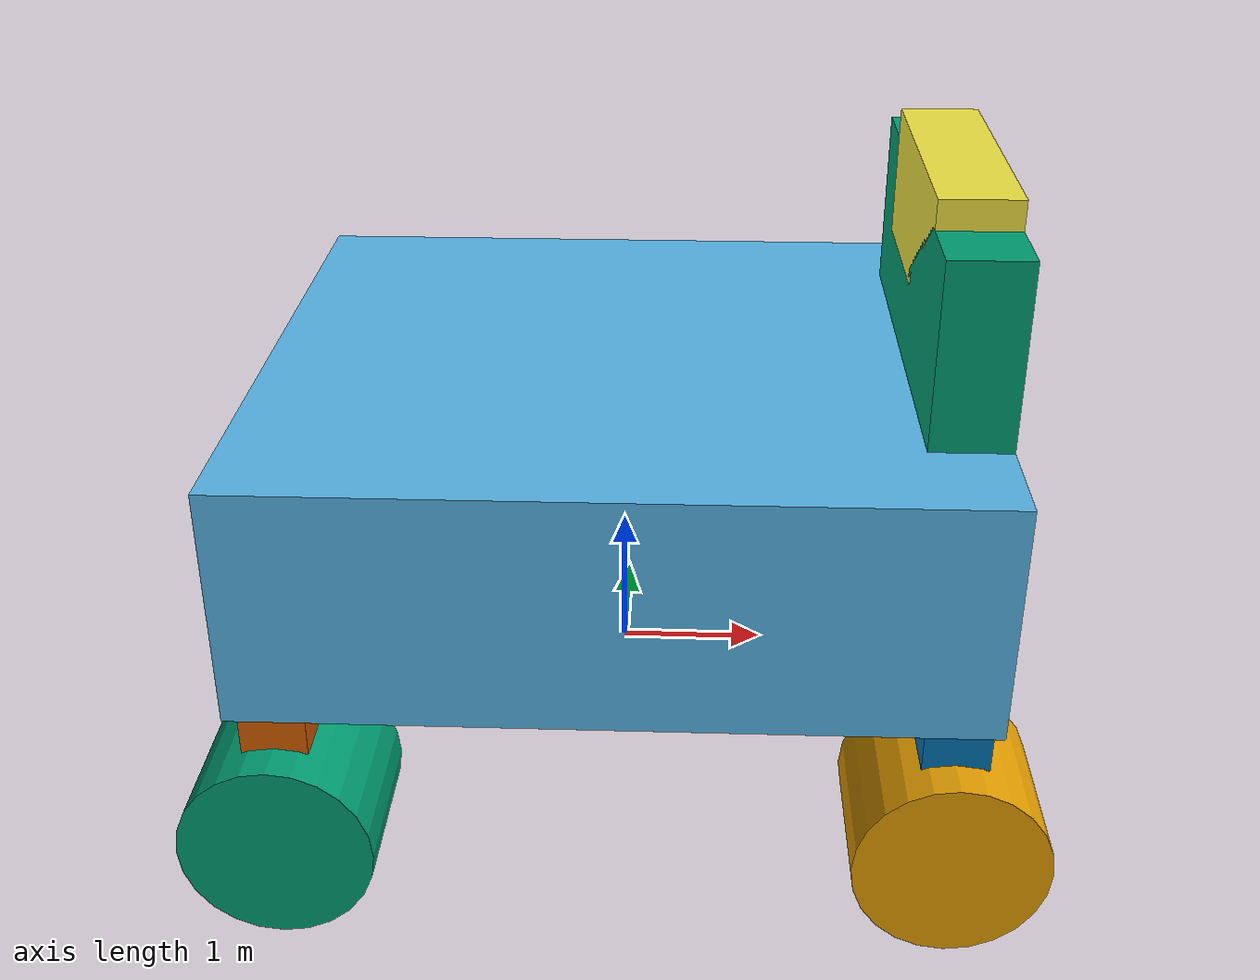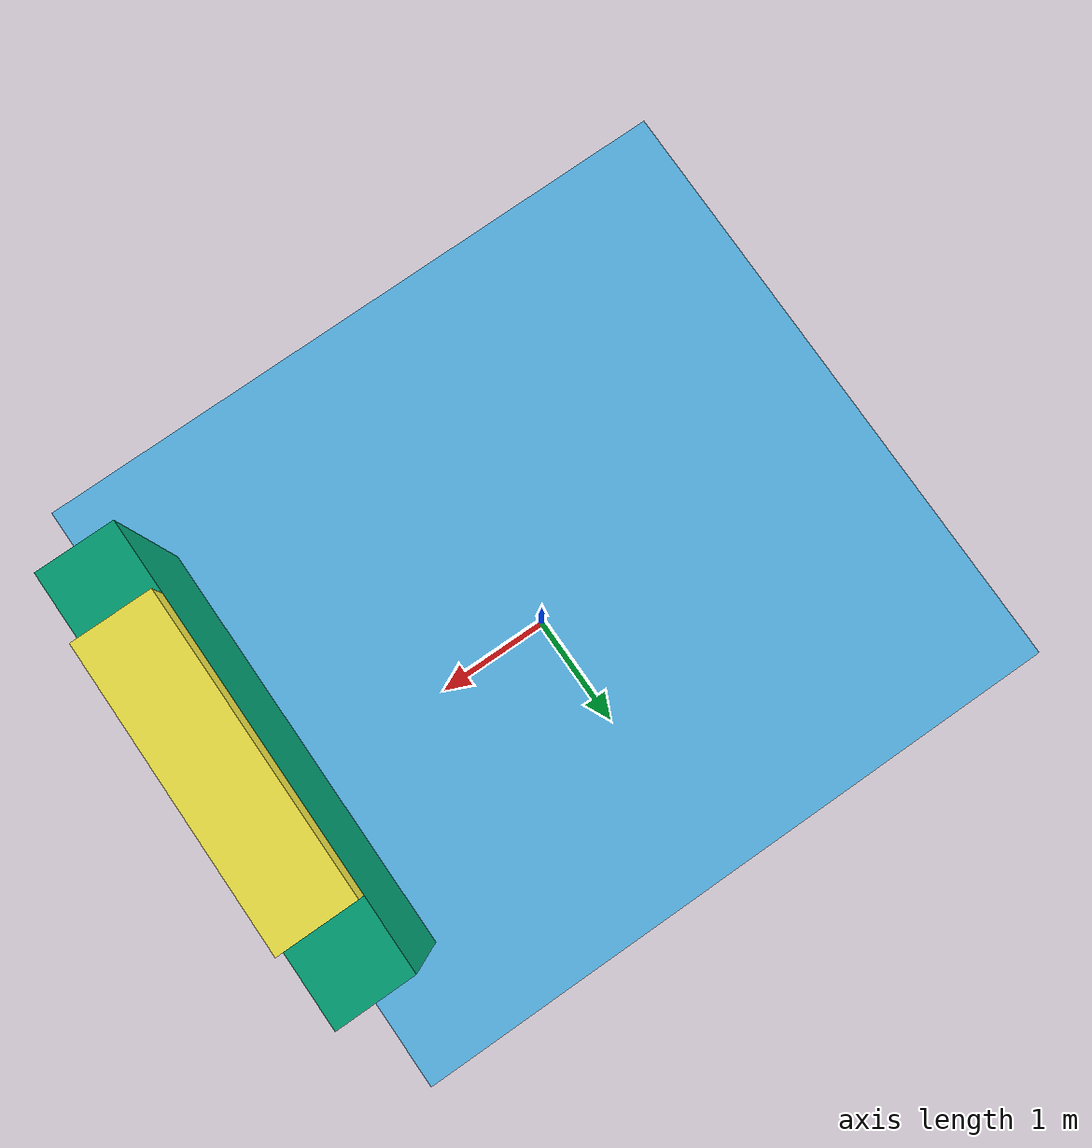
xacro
<?xml version="1.0"?>
<robot xmlns:xacro="http://www.ros.org/wiki/xacro" name="mani">

	<!-- TODO: set to correct mass values
		   set to correct inertia values
		   joint speed chassis_to_steeringangles
		   adjust coordinate system in CAD files
		   add camera head -->

	<xacro:property name="to_scale" value="0.01"/>

	<!-- Links -->
	<link name="dummy">
	</link>

	<link name="chassis">
		<xacro:property name="ch_x_depth" value="4.84"/>
		<xacro:property name="ch_y_width" value="4.50"/>
		<xacro:property name="ch_z_height" value="1.59"/>
		<xacro:property name="ch_mass" value="0.1"/> <!-- 12.191 in kg -->

		<visual name="visual">
			<origin xyz="0 0 0"/>
			<geometry>
				<box size="${ch_x_depth} ${ch_y_width} ${ch_z_height}"/>
			</geometry>
		</visual>

		<!-- simplify as a box for quicker processing -->
		<collision name="collision">
			<origin xyz="0 0 0" rpy="0 0 0"/>
			<geometry>
				<box size="${ch_x_depth} ${ch_y_width} ${ch_z_height}"/>
			</geometry>
		</collision>

		<inertial>
			<!-- origin = center of mass -->
			<mass value="${ch_mass}"/>
			<inertia ixx="0.1"
				 ixy="0"
				 ixz="0"
				 iyy="0.1"
				 iyz="0"
				 izz="0.1"/>
		</inertial>
	</link>

	<link name="camera_neck">
		<xacro:property name="camn_x" value="0.53"/>
		<xacro:property name="camn_y" value="3.05"/>
		<xacro:property name="camn_z" value="1.22"/>
		<xacro:property name="camn_mass" value="0.1"/>

		<visual name="visual">

			<origin xyz="0 0 0"/>
			<geometry>
				<box size="${camn_x} ${camn_y} ${camn_z}"/>
			</geometry>
		</visual>

		<collision name="collision">
			<origin xyz="0 0 0"/>
                        <geometry>
                                <box size="${camn_x} ${camn_y} ${camn_z}"/>
                        </geometry>
		</collision>

		<inertial>
			<mass value="${camn_mass}"/>
			<inertia ixx="0.1"
                                 ixy="0"
                                 ixz="0"
                                 iyy="0.1"
                                 iyz="0"
                                 izz="0.1"/>
		</inertial>
	</link>

	<link name="camera_head">
		<xacro:property name="camh_x" value="0.53"/>
		<xacro:property name="camh_y" value="2.03"/>
		<xacro:property name="camh_z" value="0.88"/>
		<xacro:property name="camh_mass" value="0.1"/>

		<visual name="visual">
			<origin xyz="0 0 0"/>
			<geometry>
				<box size="${camh_x} ${camh_y} ${camh_z}"/>
			</geometry>
		</visual>

		<collision name="collision">
			<origin xyz="0 0 ${camh_z/3}" rpy="0 0 1.570"/>
			<geometry>
				<box size="${camh_x} ${camh_y} ${camh_z}"/>
			</geometry>
		</collision>

		<inertial>
			<mass value="${camh_mass}"/>
			<inertia ixx="0.1"
                                 ixy="0"
                                 ixz="0"
                                 iyy="0.1"
                                 iyz="0"
                                 izz="0.1"/>
		</inertial>
	</link>

	<xacro:macro name="steering_angle_inertia" params="mass">
		<inertial>
			<origin rpy="0 0 0"/>
			<mass value="${mass}"/>
			<inertia ixx="0.1"
                                 ixy="0"
                                 ixz="0"
                                 iyy="0.1"
                                 iyz="0"
                                 izz="0.1"/>
                </inertial>
	</xacro:macro>

	<xacro:property name="sa_x" value="0.44"/>
        <xacro:property name="sa_y" value="1.21"/>
        <xacro:property name="sa_z" value="1.30"/>
        <xacro:property name="sa_mass" value="0.1"/>
	<xacro:macro name="steering_angle" params="name *visual_origin *collision_origin *inertial_origin">
		<link name="steering_angle_${name}">
                	<visual name="visual">
                    		<xacro:insert_block name="visual_origin"/>
                        	<geometry>
                                	<box size="${sa_x} ${sa_y} ${sa_z}"/>
                        	</geometry>
                	</visual>

                	<!-- not possible to simplify with a simple shape, so use original mesh -->
                	<collision name="collision">
                        	<xacro:insert_block name="collision_origin"/>
                        	<geometry>
                        		<box size="${sa_x} ${sa_y} ${sa_z}"/>
</geometry>
                	</collision>

                	<inertial>
				<xacro:insert_block name="inertial_origin"/>
				<mass value="${sa_mass}"/>
				<inertia ixx="0.1"
                                 	 ixy="0"
                                	 ixz="0"
                                 	 iyy="0.1"
                                 	 iyz="0"
                                 	 izz="0.1"/>
                	</inertial>
        	</link>
	</xacro:macro>

	<steering_angle name="frontright">
		<origin xyz="0 ${sa_y/4} 0"/>
		<origin xyz="0 ${sa_y/4} 0"/>
		<origin xyz="0 0 0"/>
	</steering_angle>
         <link name="steering_angle_backright">
                <visual name="visual">
			<origin xyz="0 ${sa_y/4} 0"/>
			<geometry>
				<box size="${sa_x} ${sa_y} ${sa_z}"/>
			</geometry>
                </visual>

                <!-- not possible to simplify with a simple shape, so use original mesh -->
                <collision name="collision">
                        <origin xyz="0 ${sa_y/4} 0"/>
                        <geometry>
                        	<box size="${sa_x} ${sa_y} ${sa_z}"/>
</geometry>
                </collision>

		<xacro:steering_angle_inertia mass="${sa_mass}"/>
        </link>

	 <link name="steering_angle_frontleft">

              	<visual name="visual">
			<origin xyz="0 ${-sa_y/4} 0"/>
			<geometry>
				<box size="${sa_x} ${sa_y} ${sa_z}"/>
			</geometry>
                </visual>

                <!-- not possible to simplify with a simple shape, so use original mesh -->
                <collision name="collision">
                        <origin xyz="0 ${-sa_y/4} 0"/>
                        <geometry>
                        <box size="${sa_x} ${sa_y} ${sa_z}"/>
                             </geometry>
                </collision>

		<xacro:steering_angle_inertia mass="${sa_mass}"/>
        </link>

	<link name="steering_angle_backleft">
               	<visual name="visual">
			<origin xyz="0 ${-sa_y/4} 0"/>
			<geometry>
				<box size="${sa_x} ${sa_y} ${sa_z}"/>
			</geometry>
                </visual>

                <!-- not possible to simplify with a simple shape, so use original mesh -->
                <collision name="collision">
                       	<origin xyz="0 ${-sa_y/4} 0"/>
                        <geometry>
                        	<box size="${sa_x} ${sa_y} ${sa_z}"/>
</geometry>
                </collision>

		<xacro:steering_angle_inertia mass="${sa_mass}"/>
	</link>

	<!-- wheels -->

	<link name="wheel_frontright">
		<xacro:property name="wh_length" value="1.15"/>
  		<xacro:property name="wh_radius" value="${1.30/2}"/>
               	<xacro:property name="wh_mass" value="0.1"/>

		<visual name="visual">

			<origin xyz="0 0 0"/>
			<geometry>
				<cylinder length="${wh_length}" radius="${wh_radius}"/>
			</geometry>
		</visual>

		<collision name="collision">
			<origin xyz="0 0 0"/>
			<geometry>
				<cylinder length="${wh_length}" radius="${wh_radius}"/>
			</geometry>
		</collision>

		<inertial>
			<mass value="${wh_mass}"/>
			<inertia ixx="0.1"
				 ixy="0"
				 ixz="0"
				 iyy="0.1"
				 iyz="0"
				 izz="0.1"/>
		</inertial>
	</link>

	<link name="wheel_frontleft">
                <visual name="visual">
			<origin xyz="0 0 0"/>
                        <geometry>
				<cylinder length="${wh_length}" radius="${wh_radius}"/>
			</geometry>
                </visual>

                <collision name="collision">
                        <origin xyz="0 0 0"/>
                        <geometry>
                                <cylinder length="${wh_length}" radius="${wh_radius}"/>
                        </geometry>
                </collision>

                <inertial>
                        <mass value="${wh_mass}"/>
                        <inertia ixx="0.1"
                                 ixy="0"
                                 ixz="0"
                                 iyy="0.1"
                                 iyz="0"
                                 izz="0.1"/>
                </inertial>
        </link>

	<link name="wheel_backright">
                <visual name="visual">
			<origin xyz="0 0 0"/>
			<geometry>
				<cylinder length="${wh_length}" radius="${wh_radius}"/>
			</geometry>
		</visual>

                <collision name="collision">
                        <origin xyz="0 0 0"/>
                        <geometry>
                                <cylinder length="${wh_length}" radius="${wh_radius}"/>
                        </geometry>
                </collision>

                <inertial>
                        <mass value="${wh_mass}"/>
                        <inertia ixx="0.1"
                                 ixy="0"
                                 ixz="0"
                                 iyy="0.1"
                                 iyz="0"
                                 izz="0.1"/>
                </inertial>
        </link>

	<link name="wheel_backleft">
                <visual name="visual">
                        <origin xyz="0 0 0"/>
                        <geometry>
                                <cylinder length="${wh_length}" radius="${wh_radius}"/>
                        </geometry>
                </visual>

                <collision name="collision">
                        <origin xyz="0 0 0"/>
                        <geometry>
                                <cylinder length="${wh_length}" radius="${wh_radius}"/>
                        </geometry>
                </collision>

                <inertial>
                       	<mass value="${wh_mass}"/>
                        <inertia ixx="0.1"
                                 ixy="0"
                                 ixz="0"
                                 iyy="0.1"
                                 iyz="0"
                                 izz="0.1"/>
                </inertial>
        </link>

	<!-- Joints -->
	<joint name="dummy_joint" type="fixed">
		<parent link="dummy"/>
		<child link="chassis"/>
		<origin xyz="0 0 ${-(2-ch_z_height)/2+sa_z-0.22+wh_radius}"/>
	</joint>

	<!-- camera head 60-60 grad-->
	<joint name="chassis_to_cam_neck" type="revolute"> <!-- revolute -->
		<parent link="chassis"/>
		<child link="camera_neck"/>
		<limit effort="100.0" lower="-1.0472" upper="1.0472" velocity="10"/>
		<axis xyz="0 0 1"/>
		<origin xyz="${ch_x_depth/2-camn_x/2} 0 ${ch_z_height/2+camn_z/2}" rpy="0 0 0"/>
	</joint>

	<joint name="cam_neck_to_head" type="revolute">
		<parent link="camera_neck"/>
		<child link="camera_head"/>
		<limit effort="100.0" lower="-1.570" upper="1.570" velocity="10"/>
		<axis xyz="0 1 0"/>
		<origin xyz="0 0 ${camn_z*0.3}" rpy="0 0 0"/>
	</joint>

	<!-- f: front, b: back, l: left, r: right-->
	<xacro:property name="steering_max_vel" value="0.75"/>
	<joint name="chassis_to_steering_fr" type="revolute"> <!-- revolute -->
		<parent link="chassis"/>
		<child link="steering_angle_frontright"/>
		<limit effort="100.0" lower="-1.570" upper="1.570" velocity="${steering_max_vel}"/>
		<axis xyz="0 0 1"/>
		<origin xyz="${ch_x_depth/2-sa_x/2} ${-ch_y_width/2+sa_y/2} ${-ch_z_height/2-sa_z/2}"/>
	</joint>

	<joint name="chassis_to_steering_br" type="revolute">
                <parent link="chassis"/>
                <child link="steering_angle_backright"/>
                <limit effort="100.0" lower="-1.570" upper="1.570" velocity="${steering_max_vel}"/>
                <axis xyz="0 0 1"/>
                <origin xyz="${-ch_x_depth/2+sa_x/2} ${-ch_y_width/2+sa_y/2} ${-ch_z_height/2-sa_z/2}"/>
        </joint>

	<joint name="chassis_to_steering_fl" type="revolute">
		<parent link="chassis"/>
		<child link="steering_angle_frontleft"/>
		<limit effort="100.0" lower="-1.570" upper="1.570" velocity="${steering_max_vel}"/>
		<axis xyz="0 0 1"/>
		<origin xyz="${ch_x_depth/2-sa_x/2} ${ch_y_width/2-sa_y/2} ${-ch_z_height/2-sa_z/2}"/>
	</joint>

	<joint name="chassis_to_steering_bl" type="revolute">
                <parent link="chassis"/>
                <child link="steering_angle_backleft"/>
                <limit effort="100.0" lower="-1.570" upper="1.570" velocity="${steering_max_vel}"/>
                <axis xyz="0 0 1"/>
                <origin xyz="${-ch_x_depth/2+sa_x/2} ${ch_y_width/2-sa_y/2} ${-ch_z_height/2-sa_z/2}"/>
        </joint>

	<!-- wheel -->
	<joint name="steering_to_wheel_fr" type="continuous"> <!-- continuous -->
		<parent link="steering_angle_frontright"/>
		<child link="wheel_frontright"/>
		<axis xyz="0 0 1"/>
		<origin xyz="${0} ${0} ${-sa_z/2+0.22}" rpy="${-1.570} 0 0"/>
	</joint>

	<joint name="steering_to_wheel_fl" type="continuous">
                <parent link="steering_angle_frontleft"/>
                <child link="wheel_frontleft"/>
                <axis xyz="0 0 1"/>
                <origin xyz="${0} ${0} ${-sa_z/2+0.22}" rpy="${-1.570} 0 0"/>
        </joint>

	<joint name="steering_to_wheel_br" type="continuous">
                <parent link="steering_angle_backright"/>
                <child link="wheel_backright"/>
                <axis xyz="0 0 1"/>
                <origin xyz="${0} ${0} ${-sa_z/2+0.22}" rpy="${-1.570} 0 0"/>
        </joint>

	<joint name="steering_to_wheel_bl" type="continuous">
                <parent link="steering_angle_backleft"/>
                <child link="wheel_backleft"/>
                <axis xyz="0 0 1"/>
                <origin xyz="${0} ${0} ${-sa_z/2+0.22}" rpy="${-1.570} 0 0"/>
        </joint>

	<!-- transmission -->

        <!-- move camera neck/head -->
	<transmission name="transm_chassis_to_cam_neck">
		<type>transmission_interface/SimpleTransmission</type>
		<joint name="chassis_to_cam_neck">
			<hardwareInterface>hardware_interface/EffortJointInterface</hardwareInterface>
		</joint>
		<actuator name="motor_cam_neck">
			<hardwareInterface>EffortJointInterface</hardwareInterface>
			<mechanicalReduction>1</mechanicalReduction>
		</actuator>
	</transmission>

	<!-- move steering angles -->
	<!-- move wheels -->
	<!-- plugins -->
        <gazebo>
                <plugin name="gazebo_ros_control" filename="libgazebo_ros_control.so">
		<robotNamespace>/mani</robotNamespace>
		<robotSimType>gazebo_ros_control/DefaultRobotHWSim</robotSimType>
		<legacyModeNS>true</legacyModeNS>
                </plugin>
        </gazebo>

	<gazebo>
		<static>false</static>
	</gazebo>
</robot>
